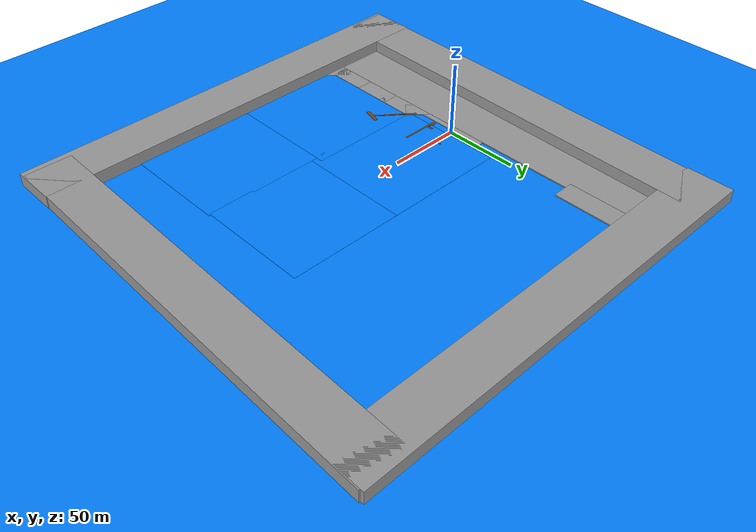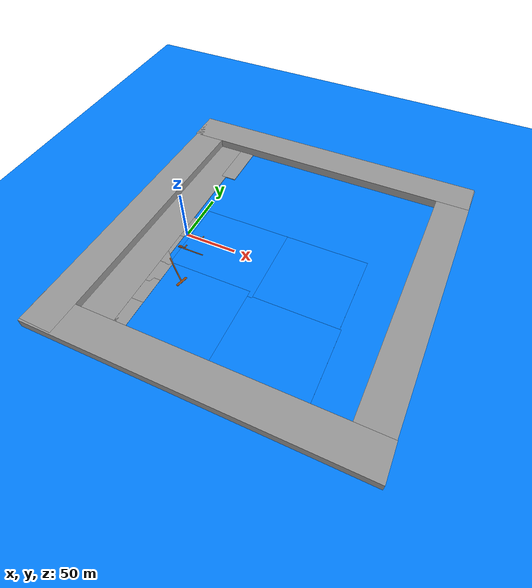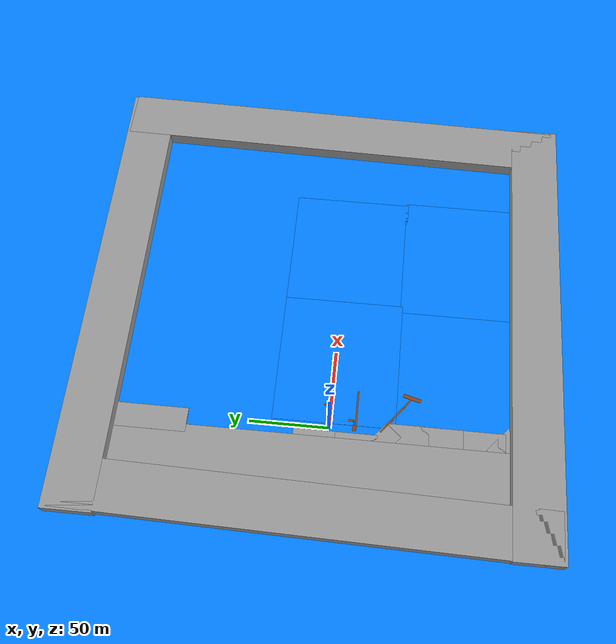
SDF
<sdf version="1.7">
 <world name="default">
  <model name="ground_plane">
   <static>1</static>
   <link name="link">
    <collision name="collision">
     <geometry><plane><normal>0 0 1</normal><size>100 100</size></plane></geometry>
     <surface><friction><ode><mu>100</mu><mu2>50</mu2></ode></friction></surface>
    </collision>
    <visual name="visual">
     <cast_shadows>0</cast_shadows>
     <geometry><plane><normal>0 0 1</normal><size>100 100</size></plane></geometry>
     <material>
      <ambient>0 0.5 1 1</ambient>
      <diffuse>0 0.5 1 1</diffuse>
      <specular>0.1 0.1 0.1 1</specular>
      <emissive>0 0 0 0</emissive>
     </material>
    </visual>
   </link>
  </model>
  <model name="water">
   <link name="link">
    <inertial>
     <mass>1.0585</mass>
     <inertia><ixx>525.225</ixx><ixy>0</ixy><ixz>0</ixz><iyy>622.97</iyy><iyz>0</iyz><izz>1148.19</izz></inertia>
    </inertial>
    <pose>37.5335 0 0 0 -0 0</pose>
    <visual name="visual">
     <geometry><box><size>84.0384 77.1644 0.109494</size></box></geometry>
     <material>
      <ambient>0 0.5 1 1</ambient>
      <diffuse>0 0.5 1 1</diffuse>
      <specular>0.1 0.1 0.1 1</specular>
      <emissive>0 0 0 0</emissive>
     </material>
    </visual>
    <collision name="collision">
     <geometry><box><size>84.0384 77.1644 0.109494</size></box></geometry>
     <surface>
      <friction>
       <ode><mu>1</mu><mu2>1</mu2><fdir1>0 0 0</fdir1><slip1>0</slip1><slip2>0</slip2></ode>
       <torsional>
        <coefficient>1</coefficient>
        <patch_radius>0</patch_radius>
        <surface_radius>0</surface_radius>
        <use_patch_radius>1</use_patch_radius>
        <ode><slip>0</slip></ode>
       </torsional>
      </friction>
      <bounce><restitution_coefficient>0</restitution_coefficient><threshold>1e+06</threshold></bounce>
      <contact>
       <collide_without_contact>0</collide_without_contact>
       <collide_without_contact_bitmask>1</collide_without_contact_bitmask>
       <collide_bitmask>1</collide_bitmask>
       <ode>
        <soft_cfm>0</soft_cfm>
        <soft_erp>0.2</soft_erp>
        <kp>1e+13</kp>
        <kd>1</kd>
        <max_vel>0.01</max_vel>
        <min_depth>0</min_depth>
       </ode>
       <bullet>
        <split_impulse>1</split_impulse>
        <split_impulse_penetration_threshold>-0.01</split_impulse_penetration_threshold>
        <soft_cfm>0</soft_cfm>
        <soft_erp>0.2</soft_erp>
        <kp>1e+13</kp>
        <kd>1</kd>
       </bullet>
      </contact>
     </surface>
    </collision>
   </link>
   <static>1</static>
   <pose>7.66775 -2.0554 0 0 -0 0</pose>
  </model>
  <model name="water_clone">
   <link name="link">
    <inertial>
     <mass>1.0585</mass>
     <inertia><ixx>525.225</ixx><ixy>0</ixy><ixz>0</ixz><iyy>622.97</iyy><iyz>0</iyz><izz>1148.19</izz></inertia>
    </inertial>
    <pose>37.5335 0 0 0 -0 0</pose>
    <visual name="visual">
     <geometry><box><size>84.0384 77.1644 0.109494</size></box></geometry>
     <material>
      <ambient>0 0.5 1 1</ambient>
      <diffuse>0 0.5 1 1</diffuse>
      <specular>0.1 0.1 0.1 1</specular>
      <emissive>0 0 0 0</emissive>
     </material>
    </visual>
    <collision name="collision">
     <geometry><box><size>84.0384 77.1644 0.109494</size></box></geometry>
     <surface>
      <friction>
       <ode><mu>1</mu><mu2>1</mu2><fdir1>0 0 0</fdir1><slip1>0</slip1><slip2>0</slip2></ode>
       <torsional>
        <coefficient>1</coefficient>
        <patch_radius>0</patch_radius>
        <surface_radius>0</surface_radius>
        <use_patch_radius>1</use_patch_radius>
        <ode><slip>0</slip></ode>
       </torsional>
      </friction>
      <bounce><restitution_coefficient>0</restitution_coefficient><threshold>1e+06</threshold></bounce>
      <contact>
       <collide_without_contact>0</collide_without_contact>
       <collide_without_contact_bitmask>1</collide_without_contact_bitmask>
       <collide_bitmask>1</collide_bitmask>
       <ode>
        <soft_cfm>0</soft_cfm>
        <soft_erp>0.2</soft_erp>
        <kp>1e+13</kp>
        <kd>1</kd>
        <max_vel>0.01</max_vel>
        <min_depth>0</min_depth>
       </ode>
       <bullet>
        <split_impulse>1</split_impulse>
        <split_impulse_penetration_threshold>-0.01</split_impulse_penetration_threshold>
        <soft_cfm>0</soft_cfm>
        <soft_erp>0.2</soft_erp>
        <kp>1e+13</kp>
        <kd>1</kd>
       </bullet>
      </contact>
     </surface>
    </collision>
   </link>
   <static>1</static>
   <pose>3.3347 -73.6319 0 0 -0 0</pose>
  </model>
  <model name="water_clone_0">
   <link name="link">
    <inertial>
     <mass>1.0585</mass>
     <inertia><ixx>525.225</ixx><ixy>0</ixy><ixz>0</ixz><iyy>622.97</iyy><iyz>0</iyz><izz>1148.19</izz></inertia>
    </inertial>
    <pose>37.5335 0 0 0 -0 0</pose>
    <visual name="visual">
     <geometry><box><size>84.0384 77.1644 0.109494</size></box></geometry>
     <material>
      <ambient>0 0.5 1 1</ambient>
      <diffuse>0 0.5 1 1</diffuse>
      <specular>0.1 0.1 0.1 1</specular>
      <emissive>0 0 0 0</emissive>
     </material>
    </visual>
    <collision name="collision">
     <geometry><box><size>84.0384 77.1644 0.109494</size></box></geometry>
     <surface>
      <friction>
       <ode><mu>1</mu><mu2>1</mu2><fdir1>0 0 0</fdir1><slip1>0</slip1><slip2>0</slip2></ode>
       <torsional>
        <coefficient>1</coefficient>
        <patch_radius>0</patch_radius>
        <surface_radius>0</surface_radius>
        <use_patch_radius>1</use_patch_radius>
        <ode><slip>0</slip></ode>
       </torsional>
      </friction>
      <bounce><restitution_coefficient>0</restitution_coefficient><threshold>1e+06</threshold></bounce>
      <contact>
       <collide_without_contact>0</collide_without_contact>
       <collide_without_contact_bitmask>1</collide_without_contact_bitmask>
       <collide_bitmask>1</collide_bitmask>
       <ode>
        <soft_cfm>0</soft_cfm>
        <soft_erp>0.2</soft_erp>
        <kp>1e+13</kp>
        <kd>1</kd>
        <max_vel>0.01</max_vel>
        <min_depth>0</min_depth>
       </ode>
       <bullet>
        <split_impulse>1</split_impulse>
        <split_impulse_penetration_threshold>-0.01</split_impulse_penetration_threshold>
        <soft_cfm>0</soft_cfm>
        <soft_erp>0.2</soft_erp>
        <kp>1e+13</kp>
        <kd>1</kd>
       </bullet>
      </contact>
     </surface>
    </collision>
   </link>
   <static>1</static>
   <pose>87.2585 -77.873 0 0 -0 0</pose>
  </model>
  <model name="water_clone_1">
   <link name="link">
    <inertial>
     <mass>1.0585</mass>
     <inertia><ixx>525.225</ixx><ixy>0</ixy><ixz>0</ixz><iyy>622.97</iyy><iyz>0</iyz><izz>1148.19</izz></inertia>
    </inertial>
    <pose>37.5335 0 0 0 -0 0</pose>
    <visual name="visual">
     <geometry><box><size>84.0384 77.1644 0.109494</size></box></geometry>
     <material>
      <ambient>0 0.5 1 1</ambient>
      <diffuse>0 0.5 1 1</diffuse>
      <specular>0.1 0.1 0.1 1</specular>
      <emissive>0 0 0 0</emissive>
     </material>
    </visual>
    <collision name="collision">
     <geometry><box><size>84.0384 77.1644 0.109494</size></box></geometry>
     <surface>
      <friction>
       <ode><mu>1</mu><mu2>1</mu2><fdir1>0 0 0</fdir1><slip1>0</slip1><slip2>0</slip2></ode>
       <torsional>
        <coefficient>1</coefficient>
        <patch_radius>0</patch_radius>
        <surface_radius>0</surface_radius>
        <use_patch_radius>1</use_patch_radius>
        <ode><slip>0</slip></ode>
       </torsional>
      </friction>
      <bounce><restitution_coefficient>0</restitution_coefficient><threshold>1e+06</threshold></bounce>
      <contact>
       <collide_without_contact>0</collide_without_contact>
       <collide_without_contact_bitmask>1</collide_without_contact_bitmask>
       <collide_bitmask>1</collide_bitmask>
       <ode>
        <soft_cfm>0</soft_cfm>
        <soft_erp>0.2</soft_erp>
        <kp>1e+13</kp>
        <kd>1</kd>
        <max_vel>0.01</max_vel>
        <min_depth>0</min_depth>
       </ode>
       <bullet>
        <split_impulse>1</split_impulse>
        <split_impulse_penetration_threshold>-0.01</split_impulse_penetration_threshold>
        <soft_cfm>0</soft_cfm>
        <soft_erp>0.2</soft_erp>
        <kp>1e+13</kp>
        <kd>1</kd>
       </bullet>
      </contact>
     </surface>
    </collision>
   </link>
   <static>1</static>
   <pose>85.9295 -2.08065 0 0 -0 0</pose>
  </model>
  <model name="ground">
   <link name="link">
    <inertial>
     <mass>1</mass>
     <inertia>
      <ixx>0.166667</ixx>
      <ixy>0</ixy>
      <ixz>0</ixz>
      <iyy>0.166667</iyy>
      <iyz>0</iyz>
      <izz>0.166667</izz>
     </inertia>
    </inertial>
    <pose>0 2.71082 0 0 -0 0</pose>
    <visual name="visual">
     <geometry><box><size>12.2775 26.0732 0.428308</size></box></geometry>
     <material>
      <lighting>1</lighting>
      <script><uri>file://media/materials/scripts/gazebo.material</uri><name>Gazebo/Grey</name></script>
      <shader type="pixel"/>
     </material>
    </visual>
    <collision name="collision">
     <geometry><box><size>12.2775 26.0732 0.428308</size></box></geometry>
     <surface>
      <friction>
       <ode><mu>1</mu><mu2>1</mu2><fdir1>0 0 0</fdir1><slip1>0</slip1><slip2>0</slip2></ode>
       <torsional>
        <coefficient>1</coefficient>
        <patch_radius>0</patch_radius>
        <surface_radius>0</surface_radius>
        <use_patch_radius>1</use_patch_radius>
        <ode><slip>0</slip></ode>
       </torsional>
      </friction>
      <bounce><restitution_coefficient>0</restitution_coefficient><threshold>1e+06</threshold></bounce>
      <contact>
       <collide_without_contact>0</collide_without_contact>
       <collide_without_contact_bitmask>1</collide_without_contact_bitmask>
       <collide_bitmask>1</collide_bitmask>
       <ode>
        <soft_cfm>0</soft_cfm>
        <soft_erp>0.2</soft_erp>
        <kp>1e+13</kp>
        <kd>1</kd>
        <max_vel>0.01</max_vel>
        <min_depth>0</min_depth>
       </ode>
       <bullet>
        <split_impulse>1</split_impulse>
        <split_impulse_penetration_threshold>-0.01</split_impulse_penetration_threshold>
        <soft_cfm>0</soft_cfm>
        <soft_erp>0.2</soft_erp>
        <kp>1e+13</kp>
        <kd>1</kd>
       </bullet>
      </contact>
     </surface>
    </collision>
   </link>
   <link name="link_clone">
    <inertial>
     <mass>1</mass>
     <inertia>
      <ixx>0.166667</ixx>
      <ixy>0</ixy>
      <ixz>0</ixz>
      <iyy>0.166667</iyy>
      <iyz>0</iyz>
      <izz>0.166667</izz>
     </inertia>
    </inertial>
    <pose>-7.60672 19.8582 0 0 -0 0.838579</pose>
    <visual name="visual">
     <geometry><box><size>12.2775 26.0732 0.428308</size></box></geometry>
     <material>
      <lighting>1</lighting>
      <script><uri>file://media/materials/scripts/gazebo.material</uri><name>Gazebo/Grey</name></script>
      <shader type="pixel"/>
     </material>
    </visual>
    <collision name="collision">
     <geometry><box><size>12.2775 26.0732 0.428308</size></box></geometry>
     <surface>
      <friction>
       <ode><mu>1</mu><mu2>1</mu2><fdir1>0 0 0</fdir1><slip1>0</slip1><slip2>0</slip2></ode>
       <torsional>
        <coefficient>1</coefficient>
        <patch_radius>0</patch_radius>
        <surface_radius>0</surface_radius>
        <use_patch_radius>1</use_patch_radius>
        <ode><slip>0</slip></ode>
       </torsional>
      </friction>
      <bounce><restitution_coefficient>0</restitution_coefficient><threshold>1e+06</threshold></bounce>
      <contact>
       <collide_without_contact>0</collide_without_contact>
       <collide_without_contact_bitmask>1</collide_without_contact_bitmask>
       <collide_bitmask>1</collide_bitmask>
       <ode>
        <soft_cfm>0</soft_cfm>
        <soft_erp>0.2</soft_erp>
        <kp>1e+13</kp>
        <kd>1</kd>
        <max_vel>0.01</max_vel>
        <min_depth>0</min_depth>
       </ode>
       <bullet>
        <split_impulse>1</split_impulse>
        <split_impulse_penetration_threshold>-0.01</split_impulse_penetration_threshold>
        <soft_cfm>0</soft_cfm>
        <soft_erp>0.2</soft_erp>
        <kp>1e+13</kp>
        <kd>1</kd>
       </bullet>
      </contact>
     </surface>
    </collision>
   </link>
   <link name="link_clone_0">
    <inertial>
     <mass>1</mass>
     <inertia>
      <ixx>0.166667</ixx>
      <ixy>0</ixy>
      <ixz>0</ixz>
      <iyy>0.166667</iyy>
      <iyz>0</iyz>
      <izz>0.166667</izz>
     </inertia>
    </inertial>
    <pose>-8.13936 34.3499 0 0 -0 0</pose>
    <visual name="visual">
     <geometry><box><size>12.2775 26.0732 0.428308</size></box></geometry>
     <material>
      <lighting>1</lighting>
      <script><uri>file://media/materials/scripts/gazebo.material</uri><name>Gazebo/Grey</name></script>
      <shader type="pixel"/>
     </material>
    </visual>
    <collision name="collision">
     <geometry><box><size>12.2775 26.0732 0.428308</size></box></geometry>
     <surface>
      <friction>
       <ode><mu>1</mu><mu2>1</mu2><fdir1>0 0 0</fdir1><slip1>0</slip1><slip2>0</slip2></ode>
       <torsional>
        <coefficient>1</coefficient>
        <patch_radius>0</patch_radius>
        <surface_radius>0</surface_radius>
        <use_patch_radius>1</use_patch_radius>
        <ode><slip>0</slip></ode>
       </torsional>
      </friction>
      <bounce><restitution_coefficient>0</restitution_coefficient><threshold>1e+06</threshold></bounce>
      <contact>
       <collide_without_contact>0</collide_without_contact>
       <collide_without_contact_bitmask>1</collide_without_contact_bitmask>
       <collide_bitmask>1</collide_bitmask>
       <ode>
        <soft_cfm>0</soft_cfm>
        <soft_erp>0.2</soft_erp>
        <kp>1e+13</kp>
        <kd>1</kd>
        <max_vel>0.01</max_vel>
        <min_depth>0</min_depth>
       </ode>
       <bullet>
        <split_impulse>1</split_impulse>
        <split_impulse_penetration_threshold>-0.01</split_impulse_penetration_threshold>
        <soft_cfm>0</soft_cfm>
        <soft_erp>0.2</soft_erp>
        <kp>1e+13</kp>
        <kd>1</kd>
       </bullet>
      </contact>
     </surface>
    </collision>
   </link>
   <link name="link_clone_0_clone">
    <inertial>
     <mass>1</mass>
     <inertia>
      <ixx>0.166667</ixx>
      <ixy>0</ixy>
      <ixz>0</ixz>
      <iyy>0.166667</iyy>
      <iyz>0</iyz>
      <izz>0.166667</izz>
     </inertia>
    </inertial>
    <pose>-8.03787 60.3254 0 0 -0 0</pose>
    <visual name="visual">
     <geometry><box><size>12.2775 26.0732 0.428308</size></box></geometry>
     <material>
      <lighting>1</lighting>
      <script><uri>file://media/materials/scripts/gazebo.material</uri><name>Gazebo/Grey</name></script>
      <shader type="pixel"/>
     </material>
    </visual>
    <collision name="collision">
     <geometry><box><size>12.2775 26.0732 0.428308</size></box></geometry>
     <surface>
      <friction>
       <ode><mu>1</mu><mu2>1</mu2><fdir1>0 0 0</fdir1><slip1>0</slip1><slip2>0</slip2></ode>
       <torsional>
        <coefficient>1</coefficient>
        <patch_radius>0</patch_radius>
        <surface_radius>0</surface_radius>
        <use_patch_radius>1</use_patch_radius>
        <ode><slip>0</slip></ode>
       </torsional>
      </friction>
      <bounce><restitution_coefficient>0</restitution_coefficient><threshold>1e+06</threshold></bounce>
      <contact>
       <collide_without_contact>0</collide_without_contact>
       <collide_without_contact_bitmask>1</collide_without_contact_bitmask>
       <collide_bitmask>1</collide_bitmask>
       <ode>
        <soft_cfm>0</soft_cfm>
        <soft_erp>0.2</soft_erp>
        <kp>1e+13</kp>
        <kd>1</kd>
        <max_vel>0.01</max_vel>
        <min_depth>0</min_depth>
       </ode>
       <bullet>
        <split_impulse>1</split_impulse>
        <split_impulse_penetration_threshold>-0.01</split_impulse_penetration_threshold>
        <soft_cfm>0</soft_cfm>
        <soft_erp>0.2</soft_erp>
        <kp>1e+13</kp>
        <kd>1</kd>
       </bullet>
      </contact>
     </surface>
    </collision>
   </link>
   <static>1</static>
   <pose>0.250638 -51.022 0.106728 0 -0 0</pose>
  </model>
  <model name="Untitled"><pose>61.4045 -75.8074 0 0 -0 0</pose><static>1</static></model>
  <model name="pontoon1">
   <link name="link">
    <inertial>
     <mass>6.89723</mass>
     <inertia><ixx>0.699771</ixx><ixy>0</ixy><ixz>0</ixz><iyy>125.749</iyy><iyz>0</iyz><izz>126.198</izz></inertia>
    </inertial>
    <pose>6.89493 0 -0.43683 0 -0 0</pose>
    <visual name="visual">
     <geometry><box><size>14.7839 1 0.466349</size></box></geometry>
     <material>
      <ambient>0.55 0.27 0.07 1</ambient>
      <diffuse>0.55 0.27 0.07 1</diffuse>
      <specular>0.1 0.1 0.1 1</specular>
      <emissive>0 0 0 0</emissive>
     </material>
    </visual>
    <collision name="collision">
     <geometry><box><size>14.7839 1 0.466349</size></box></geometry>
     <surface>
      <friction>
       <ode><mu>1</mu><mu2>1</mu2><fdir1>0 0 0</fdir1><slip1>0</slip1><slip2>0</slip2></ode>
       <torsional>
        <coefficient>1</coefficient>
        <patch_radius>0</patch_radius>
        <surface_radius>0</surface_radius>
        <use_patch_radius>1</use_patch_radius>
        <ode><slip>0</slip></ode>
       </torsional>
      </friction>
      <bounce><restitution_coefficient>0</restitution_coefficient><threshold>1e+06</threshold></bounce>
      <contact>
       <collide_without_contact>0</collide_without_contact>
       <collide_without_contact_bitmask>1</collide_without_contact_bitmask>
       <collide_bitmask>1</collide_bitmask>
       <ode>
        <soft_cfm>0</soft_cfm>
        <soft_erp>0.2</soft_erp>
        <kp>1e+13</kp>
        <kd>1</kd>
        <max_vel>0.01</max_vel>
        <min_depth>0</min_depth>
       </ode>
       <bullet>
        <split_impulse>1</split_impulse>
        <split_impulse_penetration_threshold>-0.01</split_impulse_penetration_threshold>
        <soft_cfm>0</soft_cfm>
        <soft_erp>0.2</soft_erp>
        <kp>1e+13</kp>
        <kd>1</kd>
       </bullet>
      </contact>
     </surface>
    </collision>
   </link>
   <link name="link_0">
    <inertial>
     <mass>2.18615</mass>
     <inertia><ixx>5.06693</ixx><ixy>0</ixy><ixz>0</ixz><iyy>0.213678</iyy><iyz>0</iyz><izz>5.21761</izz></inertia>
    </inertial>
    <pose>14.7716 0.008705 -0.420134 0 -0 0</pose>
    <visual name="visual">
     <geometry><box><size>1 5.25737 0.415813</size></box></geometry>
     <material>
      <ambient>0.55 0.27 0.07 1</ambient>
      <diffuse>0.55 0.27 0.07 1</diffuse>
      <specular>0.1 0.1 0.1 1</specular>
      <emissive>0 0 0 0</emissive>
     </material>
    </visual>
    <collision name="collision">
     <geometry><box><size>1 5.25737 0.415813</size></box></geometry>
     <surface>
      <friction>
       <ode><mu>1</mu><mu2>1</mu2><fdir1>0 0 0</fdir1><slip1>0</slip1><slip2>0</slip2></ode>
       <torsional>
        <coefficient>1</coefficient>
        <patch_radius>0</patch_radius>
        <surface_radius>0</surface_radius>
        <use_patch_radius>1</use_patch_radius>
        <ode><slip>0</slip></ode>
       </torsional>
      </friction>
      <bounce><restitution_coefficient>0</restitution_coefficient><threshold>1e+06</threshold></bounce>
      <contact>
       <collide_without_contact>0</collide_without_contact>
       <collide_without_contact_bitmask>1</collide_without_contact_bitmask>
       <collide_bitmask>1</collide_bitmask>
       <ode>
        <soft_cfm>0</soft_cfm>
        <soft_erp>0.2</soft_erp>
        <kp>1e+13</kp>
        <kd>1</kd>
        <max_vel>0.01</max_vel>
        <min_depth>0</min_depth>
       </ode>
       <bullet>
        <split_impulse>1</split_impulse>
        <split_impulse_penetration_threshold>-0.01</split_impulse_penetration_threshold>
        <soft_cfm>0</soft_cfm>
        <soft_erp>0.2</soft_erp>
        <kp>1e+13</kp>
        <kd>1</kd>
       </bullet>
      </contact>
     </surface>
    </collision>
   </link>
   <static>1</static>
   <pose>0.43633 1.97194 0.5 0 -0 0</pose>
  </model>
  <model name="pontoon2">
   <link name="link">
    <inertial>
     <mass>2.03797</mass>
     <inertia><ixx>0.198693</ixx><ixy>0</ixy><ixz>0</ixz><iyy>112.631</iyy><iyz>0</iyz><izz>112.772</izz></inertia>
    </inertial>
    <visual name="visual">
     <geometry><box><size>25.7492 1 0.412244</size></box></geometry>
     <material>
      <ambient>0.55 0.27 0.07 1</ambient>
      <diffuse>0.55 0.27 0.07 1</diffuse>
      <specular>0.1 0.1 0.1 1</specular>
      <emissive>0 0 0 0</emissive>
     </material>
    </visual>
    <collision name="collision">
     <geometry><box><size>25.7492 1 0.412244</size></box></geometry>
     <surface>
      <friction>
       <ode><mu>1</mu><mu2>1</mu2><fdir1>0 0 0</fdir1><slip1>0</slip1><slip2>0</slip2></ode>
       <torsional>
        <coefficient>1</coefficient>
        <patch_radius>0</patch_radius>
        <surface_radius>0</surface_radius>
        <use_patch_radius>1</use_patch_radius>
        <ode><slip>0</slip></ode>
       </torsional>
      </friction>
      <bounce><restitution_coefficient>0</restitution_coefficient><threshold>1e+06</threshold></bounce>
      <contact>
       <collide_without_contact>0</collide_without_contact>
       <collide_without_contact_bitmask>1</collide_without_contact_bitmask>
       <collide_bitmask>1</collide_bitmask>
       <ode>
        <soft_cfm>0</soft_cfm>
        <soft_erp>0.2</soft_erp>
        <kp>1e+13</kp>
        <kd>1</kd>
        <max_vel>0.01</max_vel>
        <min_depth>0</min_depth>
       </ode>
       <bullet>
        <split_impulse>1</split_impulse>
        <split_impulse_penetration_threshold>-0.01</split_impulse_penetration_threshold>
        <soft_cfm>0</soft_cfm>
        <soft_erp>0.2</soft_erp>
        <kp>1e+13</kp>
        <kd>1</kd>
       </bullet>
      </contact>
     </surface>
    </collision>
   </link>
   <link name="link_clone">
    <inertial>
     <mass>0.0692908</mass>
     <inertia>
      <ixx>0.00119337</ixx>
      <ixy>0</ixy>
      <ixz>0</ixz>
      <iyy>0.0726039</iyy>
      <iyz>0</iyz>
      <izz>0.072785</izz>
     </inertia>
    </inertial>
    <pose>-7.77701 1.36068 0 0 -0 0</pose>
    <visual name="visual">
     <geometry><box><size>3.53357 0.344994 0.296059</size></box></geometry>
     <material>
      <ambient>0.55 0.27 0.07 1</ambient>
      <diffuse>0.55 0.27 0.07 1</diffuse>
      <specular>0.1 0.1 0.1 1</specular>
      <emissive>0 0 0 0</emissive>
     </material>
    </visual>
    <collision name="collision">
     <geometry><box><size>3.53357 0.344994 0.296059</size></box></geometry>
     <surface>
      <friction>
       <ode><mu>1</mu><mu2>1</mu2><fdir1>0 0 0</fdir1><slip1>0</slip1><slip2>0</slip2></ode>
       <torsional>
        <coefficient>1</coefficient>
        <patch_radius>0</patch_radius>
        <surface_radius>0</surface_radius>
        <use_patch_radius>1</use_patch_radius>
        <ode><slip>0</slip></ode>
       </torsional>
      </friction>
      <bounce><restitution_coefficient>0</restitution_coefficient><threshold>1e+06</threshold></bounce>
      <contact>
       <collide_without_contact>0</collide_without_contact>
       <collide_without_contact_bitmask>1</collide_without_contact_bitmask>
       <collide_bitmask>1</collide_bitmask>
       <ode>
        <soft_cfm>0</soft_cfm>
        <soft_erp>0.2</soft_erp>
        <kp>1e+13</kp>
        <kd>1</kd>
        <max_vel>0.01</max_vel>
        <min_depth>0</min_depth>
       </ode>
       <bullet>
        <split_impulse>1</split_impulse>
        <split_impulse_penetration_threshold>-0.01</split_impulse_penetration_threshold>
        <soft_cfm>0</soft_cfm>
        <soft_erp>0.2</soft_erp>
        <kp>1e+13</kp>
        <kd>1</kd>
       </bullet>
      </contact>
     </surface>
    </collision>
   </link>
   <link name="link_clone_clone">
    <inertial>
     <mass>0.498797</mass>
     <inertia>
      <ixx>0.172417</ixx>
      <ixy>0</ixy>
      <ixz>0</ixz>
      <iyy>0.524602</iyy>
      <iyz>0</iyz>
      <izz>0.685821</izz>
     </inertia>
    </inertial>
    <pose>-11.19 1.03862 0 0 -0 0</pose>
    <visual name="visual">
     <geometry><box><size>3.53357 2.00332 0.367019</size></box></geometry>
     <material>
      <ambient>0.55 0.27 0.07 1</ambient>
      <diffuse>0.55 0.27 0.07 1</diffuse>
      <specular>0.1 0.1 0.1 1</specular>
      <emissive>0 0 0 0</emissive>
     </material>
    </visual>
    <collision name="collision">
     <geometry><box><size>3.53357 2.00332 0.367019</size></box></geometry>
     <surface>
      <friction>
       <ode><mu>1</mu><mu2>1</mu2><fdir1>0 0 0</fdir1><slip1>0</slip1><slip2>0</slip2></ode>
       <torsional>
        <coefficient>1</coefficient>
        <patch_radius>0</patch_radius>
        <surface_radius>0</surface_radius>
        <use_patch_radius>1</use_patch_radius>
        <ode><slip>0</slip></ode>
       </torsional>
      </friction>
      <bounce><restitution_coefficient>0</restitution_coefficient><threshold>1e+06</threshold></bounce>
      <contact>
       <collide_without_contact>0</collide_without_contact>
       <collide_without_contact_bitmask>1</collide_without_contact_bitmask>
       <collide_bitmask>1</collide_bitmask>
       <ode>
        <soft_cfm>0</soft_cfm>
        <soft_erp>0.2</soft_erp>
        <kp>1e+13</kp>
        <kd>1</kd>
        <max_vel>0.01</max_vel>
        <min_depth>0</min_depth>
       </ode>
       <bullet>
        <split_impulse>1</split_impulse>
        <split_impulse_penetration_threshold>-0.01</split_impulse_penetration_threshold>
        <soft_cfm>0</soft_cfm>
        <soft_erp>0.2</soft_erp>
        <kp>1e+13</kp>
        <kd>1</kd>
       </bullet>
      </contact>
     </surface>
    </collision>
   </link>
   <link name="link_clone_clone_0">
    <inertial>
     <mass>0.266143</mass>
     <inertia>
      <ixx>0.236556</ixx>
      <ixy>0</ixy>
      <ixz>0</ixz>
      <iyy>0.0359927</iyy>
      <iyz>0</iyz>
      <izz>0.267165</izz>
     </inertia>
    </inertial>
    <pose>-6.57032 3.12706 0 0 -0 0</pose>
    <visual name="visual">
     <geometry><box><size>1.22535 3.24724 0.348385</size></box></geometry>
     <material>
      <ambient>0.55 0.27 0.07 1</ambient>
      <diffuse>0.55 0.27 0.07 1</diffuse>
      <specular>0.1 0.1 0.1 1</specular>
      <emissive>0 0 0 0</emissive>
     </material>
    </visual>
    <collision name="collision">
     <geometry><box><size>1.22535 3.24724 0.348385</size></box></geometry>
     <surface>
      <friction>
       <ode><mu>1</mu><mu2>1</mu2><fdir1>0 0 0</fdir1><slip1>0</slip1><slip2>0</slip2></ode>
       <torsional>
        <coefficient>1</coefficient>
        <patch_radius>0</patch_radius>
        <surface_radius>0</surface_radius>
        <use_patch_radius>1</use_patch_radius>
        <ode><slip>0</slip></ode>
       </torsional>
      </friction>
      <bounce><restitution_coefficient>0</restitution_coefficient><threshold>1e+06</threshold></bounce>
      <contact>
       <collide_without_contact>0</collide_without_contact>
       <collide_without_contact_bitmask>1</collide_without_contact_bitmask>
       <collide_bitmask>1</collide_bitmask>
       <ode>
        <soft_cfm>0</soft_cfm>
        <soft_erp>0.2</soft_erp>
        <kp>1e+13</kp>
        <kd>1</kd>
        <max_vel>0.01</max_vel>
        <min_depth>0</min_depth>
       </ode>
       <bullet>
        <split_impulse>1</split_impulse>
        <split_impulse_penetration_threshold>-0.01</split_impulse_penetration_threshold>
        <soft_cfm>0</soft_cfm>
        <soft_erp>0.2</soft_erp>
        <kp>1e+13</kp>
        <kd>1</kd>
       </bullet>
      </contact>
     </surface>
    </collision>
   </link>
   <static>1</static>
   <pose>12.812 -16.1142 0.075651 0 -0 0</pose>
  </model>
  <model name="pontoon3">
   <link name="link">
    <inertial>
     <mass>3.42045</mass>
     <inertia><ixx>0.368894</ixx><ixy>0</ixy><ixz>0</ixz><iyy>263.991</iyy><iyz>0</iyz><izz>264.193</izz></inertia>
    </inertial>
    <visual name="visual">
     <geometry><box><size>30.4281 1 0.542397</size></box></geometry>
     <material>
      <ambient>0.55 0.27 0.07 1</ambient>
      <diffuse>0.55 0.27 0.07 1</diffuse>
      <specular>0.1 0.1 0.1 1</specular>
      <emissive>0 0 0 0</emissive>
     </material>
    </visual>
    <collision name="collision">
     <geometry><box><size>30.4281 1 0.542397</size></box></geometry>
     <surface>
      <friction>
       <ode><mu>1</mu><mu2>1</mu2><fdir1>0 0 0</fdir1><slip1>0</slip1><slip2>0</slip2></ode>
       <torsional>
        <coefficient>1</coefficient>
        <patch_radius>0</patch_radius>
        <surface_radius>0</surface_radius>
        <use_patch_radius>1</use_patch_radius>
        <ode><slip>0</slip></ode>
       </torsional>
      </friction>
      <bounce><restitution_coefficient>0</restitution_coefficient><threshold>1e+06</threshold></bounce>
      <contact>
       <collide_without_contact>0</collide_without_contact>
       <collide_without_contact_bitmask>1</collide_without_contact_bitmask>
       <collide_bitmask>1</collide_bitmask>
       <ode>
        <soft_cfm>0</soft_cfm>
        <soft_erp>0.2</soft_erp>
        <kp>1e+13</kp>
        <kd>1</kd>
        <max_vel>0.01</max_vel>
        <min_depth>0</min_depth>
       </ode>
       <bullet>
        <split_impulse>1</split_impulse>
        <split_impulse_penetration_threshold>-0.01</split_impulse_penetration_threshold>
        <soft_cfm>0</soft_cfm>
        <soft_erp>0.2</soft_erp>
        <kp>1e+13</kp>
        <kd>1</kd>
       </bullet>
      </contact>
     </surface>
    </collision>
   </link>
   <link name="link_clone">
    <inertial>
     <mass>3.05617</mass>
     <inertia><ixx>1.42191</ixx><ixy>0</ixy><ixz>0</ixz><iyy>33.4759</iyy><iyz>0</iyz><izz>34.7375</izz></inertia>
    </inertial>
    <pose>14.8489 0.140112 0 0 -0 1.97926</pose>
    <visual name="visual">
     <geometry><box><size>11.4511 2.29528 0.561043</size></box></geometry>
     <material>
      <ambient>0.55 0.27 0.07 1</ambient>
      <diffuse>0.55 0.27 0.07 1</diffuse>
      <specular>0.1 0.1 0.1 1</specular>
      <emissive>0 0 0 0</emissive>
     </material>
    </visual>
    <collision name="collision">
     <geometry><box><size>11.4511 2.29528 0.561043</size></box></geometry>
     <surface>
      <friction>
       <ode><mu>1</mu><mu2>1</mu2><fdir1>0 0 0</fdir1><slip1>0</slip1><slip2>0</slip2></ode>
       <torsional>
        <coefficient>1</coefficient>
        <patch_radius>0</patch_radius>
        <surface_radius>0</surface_radius>
        <use_patch_radius>1</use_patch_radius>
        <ode><slip>0</slip></ode>
       </torsional>
      </friction>
      <bounce><restitution_coefficient>0</restitution_coefficient><threshold>1e+06</threshold></bounce>
      <contact>
       <collide_without_contact>0</collide_without_contact>
       <collide_without_contact_bitmask>1</collide_without_contact_bitmask>
       <collide_bitmask>1</collide_bitmask>
       <ode>
        <soft_cfm>0</soft_cfm>
        <soft_erp>0.2</soft_erp>
        <kp>1e+13</kp>
        <kd>1</kd>
        <max_vel>0.01</max_vel>
        <min_depth>0</min_depth>
       </ode>
       <bullet>
        <split_impulse>1</split_impulse>
        <split_impulse_penetration_threshold>-0.01</split_impulse_penetration_threshold>
        <soft_cfm>0</soft_cfm>
        <soft_erp>0.2</soft_erp>
        <kp>1e+13</kp>
        <kd>1</kd>
       </bullet>
      </contact>
     </surface>
    </collision>
   </link>
   <static>1</static>
   <pose>12.3458 -40.9902 0.052936 0 0 -0.670036</pose>
  </model>
  <model name="boundaries">
   <link name="link">
    <inertial>
     <mass>149705</mass>
     <inertia>
      <ixx>1.54649e+07</ixx>
      <ixy>0</ixy>
      <ixz>0</ixz>
      <iyy>1.13831e+09</iyy>
      <iyz>0</iyz>
      <izz>1.14757e+09</izz>
     </inertia>
    </inertial>
    <pose>-0.277473 10.4919 -0 0 -0 0</pose>
    <visual name="visual">
     <geometry><box><size>301.655 31.4824 15.7637</size></box></geometry>
     <material>
      <script><name>Gazebo/Grey</name><uri>file://media/materials/scripts/gazebo.material</uri></script>
      <shader type="pixel"/>
     </material>
    </visual>
    <collision name="collision">
     <geometry><box><size>301.655 31.4824 15.7637</size></box></geometry>
     <surface>
      <friction>
       <ode><mu>1</mu><mu2>1</mu2><fdir1>0 0 0</fdir1><slip1>0</slip1><slip2>0</slip2></ode>
       <torsional>
        <coefficient>1</coefficient>
        <patch_radius>0</patch_radius>
        <surface_radius>0</surface_radius>
        <use_patch_radius>1</use_patch_radius>
        <ode><slip>0</slip></ode>
       </torsional>
      </friction>
      <bounce><restitution_coefficient>0</restitution_coefficient><threshold>1e+06</threshold></bounce>
      <contact>
       <collide_without_contact>0</collide_without_contact>
       <collide_without_contact_bitmask>1</collide_without_contact_bitmask>
       <collide_bitmask>1</collide_bitmask>
       <ode>
        <soft_cfm>0</soft_cfm>
        <soft_erp>0.2</soft_erp>
        <kp>1e+13</kp>
        <kd>1</kd>
        <max_vel>0.01</max_vel>
        <min_depth>0</min_depth>
       </ode>
       <bullet>
        <split_impulse>1</split_impulse>
        <split_impulse_penetration_threshold>-0.01</split_impulse_penetration_threshold>
        <soft_cfm>0</soft_cfm>
        <soft_erp>0.2</soft_erp>
        <kp>1e+13</kp>
        <kd>1</kd>
       </bullet>
      </contact>
     </surface>
    </collision>
   </link>
   <link name="link_clone">
    <inertial>
     <mass>149705</mass>
     <inertia>
      <ixx>1.54649e+07</ixx>
      <ixy>0</ixy>
      <ixz>0</ixz>
      <iyy>1.13831e+09</iyy>
      <iyz>0</iyz>
      <izz>1.14757e+09</izz>
     </inertia>
    </inertial>
    <pose>4.44402 286.433 -3e-06 0 -0 0</pose>
    <visual name="visual">
     <geometry><box><size>301.655 31.4824 15.7637</size></box></geometry>
     <material>
      <script><name>Gazebo/Grey</name><uri>file://media/materials/scripts/gazebo.material</uri></script>
      <shader type="pixel"/>
     </material>
    </visual>
    <collision name="collision">
     <geometry><box><size>301.655 31.4824 15.7637</size></box></geometry>
     <surface>
      <friction>
       <ode><mu>1</mu><mu2>1</mu2><fdir1>0 0 0</fdir1><slip1>0</slip1><slip2>0</slip2></ode>
       <torsional>
        <coefficient>1</coefficient>
        <patch_radius>0</patch_radius>
        <surface_radius>0</surface_radius>
        <use_patch_radius>1</use_patch_radius>
        <ode><slip>0</slip></ode>
       </torsional>
      </friction>
      <bounce><restitution_coefficient>0</restitution_coefficient><threshold>1e+06</threshold></bounce>
      <contact>
       <collide_without_contact>0</collide_without_contact>
       <collide_without_contact_bitmask>1</collide_without_contact_bitmask>
       <collide_bitmask>1</collide_bitmask>
       <ode>
        <soft_cfm>0</soft_cfm>
        <soft_erp>0.2</soft_erp>
        <kp>1e+13</kp>
        <kd>1</kd>
        <max_vel>0.01</max_vel>
        <min_depth>0</min_depth>
       </ode>
       <bullet>
        <split_impulse>1</split_impulse>
        <split_impulse_penetration_threshold>-0.01</split_impulse_penetration_threshold>
        <soft_cfm>0</soft_cfm>
        <soft_erp>0.2</soft_erp>
        <kp>1e+13</kp>
        <kd>1</kd>
       </bullet>
      </contact>
     </surface>
    </collision>
   </link>
   <link name="link_clone_clone">
    <inertial>
     <mass>149705</mass>
     <inertia>
      <ixx>1.54649e+07</ixx>
      <ixy>0</ixy>
      <ixz>0</ixz>
      <iyy>1.13831e+09</iyy>
      <iyz>0</iyz>
      <izz>1.14757e+09</izz>
     </inertia>
    </inertial>
    <pose>137.163 149.498 -5e-06 0 -0 1.54926</pose>
    <visual name="visual">
     <geometry><box><size>301.655 31.4824 15.7637</size></box></geometry>
     <material>
      <script><name>Gazebo/Grey</name><uri>file://media/materials/scripts/gazebo.material</uri></script>
      <shader type="pixel"/>
     </material>
    </visual>
    <collision name="collision">
     <geometry><box><size>301.655 31.4824 15.7637</size></box></geometry>
     <surface>
      <friction>
       <ode><mu>1</mu><mu2>1</mu2><fdir1>0 0 0</fdir1><slip1>0</slip1><slip2>0</slip2></ode>
       <torsional>
        <coefficient>1</coefficient>
        <patch_radius>0</patch_radius>
        <surface_radius>0</surface_radius>
        <use_patch_radius>1</use_patch_radius>
        <ode><slip>0</slip></ode>
       </torsional>
      </friction>
      <bounce><restitution_coefficient>0</restitution_coefficient><threshold>1e+06</threshold></bounce>
      <contact>
       <collide_without_contact>0</collide_without_contact>
       <collide_without_contact_bitmask>1</collide_without_contact_bitmask>
       <collide_bitmask>1</collide_bitmask>
       <ode>
        <soft_cfm>0</soft_cfm>
        <soft_erp>0.2</soft_erp>
        <kp>1e+13</kp>
        <kd>1</kd>
        <max_vel>0.01</max_vel>
        <min_depth>0</min_depth>
       </ode>
       <bullet>
        <split_impulse>1</split_impulse>
        <split_impulse_penetration_threshold>-0.01</split_impulse_penetration_threshold>
        <soft_cfm>0</soft_cfm>
        <soft_erp>0.2</soft_erp>
        <kp>1e+13</kp>
        <kd>1</kd>
       </bullet>
      </contact>
     </surface>
    </collision>
   </link>
   <link name="link_clone_clone_clone">
    <inertial>
     <mass>149705</mass>
     <inertia>
      <ixx>1.54649e+07</ixx>
      <ixy>0</ixy>
      <ixz>0</ixz>
      <iyy>1.13831e+09</iyy>
      <iyz>0</iyz>
      <izz>1.14757e+09</izz>
     </inertia>
    </inertial>
    <pose>-132.325 147.143 -6e-06 0 -0 1.54926</pose>
    <visual name="visual">
     <geometry><box><size>301.655 31.4824 15.7637</size></box></geometry>
     <material>
      <script><name>Gazebo/Grey</name><uri>file://media/materials/scripts/gazebo.material</uri></script>
      <shader type="pixel"/>
     </material>
    </visual>
    <collision name="collision">
     <geometry><box><size>301.655 31.4824 15.7637</size></box></geometry>
     <surface>
      <friction>
       <ode><mu>1</mu><mu2>1</mu2><fdir1>0 0 0</fdir1><slip1>0</slip1><slip2>0</slip2></ode>
       <torsional>
        <coefficient>1</coefficient>
        <patch_radius>0</patch_radius>
        <surface_radius>0</surface_radius>
        <use_patch_radius>1</use_patch_radius>
        <ode><slip>0</slip></ode>
       </torsional>
      </friction>
      <bounce><restitution_coefficient>0</restitution_coefficient><threshold>1e+06</threshold></bounce>
      <contact>
       <collide_without_contact>0</collide_without_contact>
       <collide_without_contact_bitmask>1</collide_without_contact_bitmask>
       <collide_bitmask>1</collide_bitmask>
       <ode>
        <soft_cfm>0</soft_cfm>
        <soft_erp>0.2</soft_erp>
        <kp>1e+13</kp>
        <kd>1</kd>
        <max_vel>0.01</max_vel>
        <min_depth>0</min_depth>
       </ode>
       <bullet>
        <split_impulse>1</split_impulse>
        <split_impulse_penetration_threshold>-0.01</split_impulse_penetration_threshold>
        <soft_cfm>0</soft_cfm>
        <soft_erp>0.2</soft_erp>
        <kp>1e+13</kp>
        <kd>1</kd>
       </bullet>
      </contact>
     </surface>
    </collision>
   </link>
   <static>1</static>
   <pose>80.2565 -137.242 0.5 0 -0 0</pose>
  </model>
  <model name="ground_clone_1">
   <link name="link">
    <inertial>
     <mass>1</mass>
     <inertia>
      <ixx>0.166667</ixx>
      <ixy>0</ixy>
      <ixz>0</ixz>
      <iyy>0.166667</iyy>
      <iyz>0</iyz>
      <izz>0.166667</izz>
     </inertia>
    </inertial>
    <pose>0 2.71082 0 0 -0 0</pose>
    <visual name="visual">
     <geometry><box><size>12.2775 26.0732 0.428308</size></box></geometry>
     <material>
      <lighting>1</lighting>
      <script><uri>file://media/materials/scripts/gazebo.material</uri><name>Gazebo/Grey</name></script>
      <shader type="pixel"/>
     </material>
    </visual>
    <collision name="collision">
     <geometry><box><size>12.2775 26.0732 0.428308</size></box></geometry>
     <surface>
      <friction>
       <ode><mu>1</mu><mu2>1</mu2><fdir1>0 0 0</fdir1><slip1>0</slip1><slip2>0</slip2></ode>
       <torsional>
        <coefficient>1</coefficient>
        <patch_radius>0</patch_radius>
        <surface_radius>0</surface_radius>
        <use_patch_radius>1</use_patch_radius>
        <ode><slip>0</slip></ode>
       </torsional>
      </friction>
      <bounce><restitution_coefficient>0</restitution_coefficient><threshold>1e+06</threshold></bounce>
      <contact>
       <collide_without_contact>0</collide_without_contact>
       <collide_without_contact_bitmask>1</collide_without_contact_bitmask>
       <collide_bitmask>1</collide_bitmask>
       <ode>
        <soft_cfm>0</soft_cfm>
        <soft_erp>0.2</soft_erp>
        <kp>1e+13</kp>
        <kd>1</kd>
        <max_vel>0.01</max_vel>
        <min_depth>0</min_depth>
       </ode>
       <bullet>
        <split_impulse>1</split_impulse>
        <split_impulse_penetration_threshold>-0.01</split_impulse_penetration_threshold>
        <soft_cfm>0</soft_cfm>
        <soft_erp>0.2</soft_erp>
        <kp>1e+13</kp>
        <kd>1</kd>
       </bullet>
      </contact>
     </surface>
    </collision>
   </link>
   <link name="link_clone">
    <inertial>
     <mass>1</mass>
     <inertia>
      <ixx>0.166667</ixx>
      <ixy>0</ixy>
      <ixz>0</ixz>
      <iyy>0.166667</iyy>
      <iyz>0</iyz>
      <izz>0.166667</izz>
     </inertia>
    </inertial>
    <pose>-7.60672 19.8582 0 0 -0 0.838579</pose>
    <visual name="visual">
     <geometry><box><size>12.2775 26.0732 0.428308</size></box></geometry>
     <material>
      <lighting>1</lighting>
      <script><uri>file://media/materials/scripts/gazebo.material</uri><name>Gazebo/Grey</name></script>
      <shader type="pixel"/>
     </material>
    </visual>
    <collision name="collision">
     <geometry><box><size>12.2775 26.0732 0.428308</size></box></geometry>
     <surface>
      <friction>
       <ode><mu>1</mu><mu2>1</mu2><fdir1>0 0 0</fdir1><slip1>0</slip1><slip2>0</slip2></ode>
       <torsional>
        <coefficient>1</coefficient>
        <patch_radius>0</patch_radius>
        <surface_radius>0</surface_radius>
        <use_patch_radius>1</use_patch_radius>
        <ode><slip>0</slip></ode>
       </torsional>
      </friction>
      <bounce><restitution_coefficient>0</restitution_coefficient><threshold>1e+06</threshold></bounce>
      <contact>
       <collide_without_contact>0</collide_without_contact>
       <collide_without_contact_bitmask>1</collide_without_contact_bitmask>
       <collide_bitmask>1</collide_bitmask>
       <ode>
        <soft_cfm>0</soft_cfm>
        <soft_erp>0.2</soft_erp>
        <kp>1e+13</kp>
        <kd>1</kd>
        <max_vel>0.01</max_vel>
        <min_depth>0</min_depth>
       </ode>
       <bullet>
        <split_impulse>1</split_impulse>
        <split_impulse_penetration_threshold>-0.01</split_impulse_penetration_threshold>
        <soft_cfm>0</soft_cfm>
        <soft_erp>0.2</soft_erp>
        <kp>1e+13</kp>
        <kd>1</kd>
       </bullet>
      </contact>
     </surface>
    </collision>
   </link>
   <link name="link_clone_0">
    <inertial>
     <mass>1</mass>
     <inertia>
      <ixx>0.166667</ixx>
      <ixy>0</ixy>
      <ixz>0</ixz>
      <iyy>0.166667</iyy>
      <iyz>0</iyz>
      <izz>0.166667</izz>
     </inertia>
    </inertial>
    <pose>-8.13936 34.3499 0 0 -0 0</pose>
    <visual name="visual">
     <geometry><box><size>12.2775 26.0732 0.428308</size></box></geometry>
     <material>
      <lighting>1</lighting>
      <script><uri>file://media/materials/scripts/gazebo.material</uri><name>Gazebo/Grey</name></script>
      <shader type="pixel"/>
     </material>
    </visual>
    <collision name="collision">
     <geometry><box><size>12.2775 26.0732 0.428308</size></box></geometry>
     <surface>
      <friction>
       <ode><mu>1</mu><mu2>1</mu2><fdir1>0 0 0</fdir1><slip1>0</slip1><slip2>0</slip2></ode>
       <torsional>
        <coefficient>1</coefficient>
        <patch_radius>0</patch_radius>
        <surface_radius>0</surface_radius>
        <use_patch_radius>1</use_patch_radius>
        <ode><slip>0</slip></ode>
       </torsional>
      </friction>
      <bounce><restitution_coefficient>0</restitution_coefficient><threshold>1e+06</threshold></bounce>
      <contact>
       <collide_without_contact>0</collide_without_contact>
       <collide_without_contact_bitmask>1</collide_without_contact_bitmask>
       <collide_bitmask>1</collide_bitmask>
       <ode>
        <soft_cfm>0</soft_cfm>
        <soft_erp>0.2</soft_erp>
        <kp>1e+13</kp>
        <kd>1</kd>
        <max_vel>0.01</max_vel>
        <min_depth>0</min_depth>
       </ode>
       <bullet>
        <split_impulse>1</split_impulse>
        <split_impulse_penetration_threshold>-0.01</split_impulse_penetration_threshold>
        <soft_cfm>0</soft_cfm>
        <soft_erp>0.2</soft_erp>
        <kp>1e+13</kp>
        <kd>1</kd>
       </bullet>
      </contact>
     </surface>
    </collision>
   </link>
   <link name="link_clone_0_clone">
    <inertial>
     <mass>1</mass>
     <inertia>
      <ixx>0.166667</ixx>
      <ixy>0</ixy>
      <ixz>0</ixz>
      <iyy>0.166667</iyy>
      <iyz>0</iyz>
      <izz>0.166667</izz>
     </inertia>
    </inertial>
    <pose>-8.03787 60.3254 0 0 -0 0</pose>
    <visual name="visual">
     <geometry><box><size>12.2775 26.0732 0.428308</size></box></geometry>
     <material>
      <lighting>1</lighting>
      <script><uri>file://media/materials/scripts/gazebo.material</uri><name>Gazebo/Grey</name></script>
      <shader type="pixel"/>
     </material>
    </visual>
    <collision name="collision">
     <geometry><box><size>12.2775 26.0732 0.428308</size></box></geometry>
     <surface>
      <friction>
       <ode><mu>1</mu><mu2>1</mu2><fdir1>0 0 0</fdir1><slip1>0</slip1><slip2>0</slip2></ode>
       <torsional>
        <coefficient>1</coefficient>
        <patch_radius>0</patch_radius>
        <surface_radius>0</surface_radius>
        <use_patch_radius>1</use_patch_radius>
        <ode><slip>0</slip></ode>
       </torsional>
      </friction>
      <bounce><restitution_coefficient>0</restitution_coefficient><threshold>1e+06</threshold></bounce>
      <contact>
       <collide_without_contact>0</collide_without_contact>
       <collide_without_contact_bitmask>1</collide_without_contact_bitmask>
       <collide_bitmask>1</collide_bitmask>
       <ode>
        <soft_cfm>0</soft_cfm>
        <soft_erp>0.2</soft_erp>
        <kp>1e+13</kp>
        <kd>1</kd>
        <max_vel>0.01</max_vel>
        <min_depth>0</min_depth>
       </ode>
       <bullet>
        <split_impulse>1</split_impulse>
        <split_impulse_penetration_threshold>-0.01</split_impulse_penetration_threshold>
        <soft_cfm>0</soft_cfm>
        <soft_erp>0.2</soft_erp>
        <kp>1e+13</kp>
        <kd>1</kd>
       </bullet>
      </contact>
     </surface>
    </collision>
   </link>
   <static>1</static>
   <pose>8.16305 -129.909 0.106728 0 -0 0</pose>
  </model>
  <model name="main_ground">
   <link name="link">
    <inertial>
     <mass>9729.95</mass>
     <inertia>
      <ixx>6.49677e+07</ixx>
      <ixy>0</ixy>
      <ixz>0</ixz>
      <iyy>958854</iyy>
      <iyz>0</iyz>
      <izz>6.59249e+07</izz>
     </inertia>
    </inertial>
    <pose>5.42472 35.2281 -0.662949 0 -0 0</pose>
    <visual name="visual">
     <geometry><box><size>34.3738 283.062 1</size></box></geometry>
     <material>
      <script><name>Gazebo/Grey</name><uri>file://media/materials/scripts/gazebo.material</uri></script>
      <shader type="pixel"/>
     </material>
    </visual>
    <collision name="collision">
     <geometry><box><size>34.3738 283.062 1</size></box></geometry>
     <surface>
      <friction>
       <ode><mu>1</mu><mu2>1</mu2><fdir1>0 0 0</fdir1><slip1>0</slip1><slip2>0</slip2></ode>
       <torsional>
        <coefficient>1</coefficient>
        <patch_radius>0</patch_radius>
        <surface_radius>0</surface_radius>
        <use_patch_radius>1</use_patch_radius>
        <ode><slip>0</slip></ode>
       </torsional>
      </friction>
      <bounce><restitution_coefficient>0</restitution_coefficient><threshold>1e+06</threshold></bounce>
      <contact>
       <collide_without_contact>0</collide_without_contact>
       <collide_without_contact_bitmask>1</collide_without_contact_bitmask>
       <collide_bitmask>1</collide_bitmask>
       <ode>
        <soft_cfm>0</soft_cfm>
        <soft_erp>0.2</soft_erp>
        <kp>1e+13</kp>
        <kd>1</kd>
        <max_vel>0.01</max_vel>
        <min_depth>0</min_depth>
       </ode>
       <bullet>
        <split_impulse>1</split_impulse>
        <split_impulse_penetration_threshold>-0.01</split_impulse_penetration_threshold>
        <soft_cfm>0</soft_cfm>
        <soft_erp>0.2</soft_erp>
        <kp>1e+13</kp>
        <kd>1</kd>
       </bullet>
      </contact>
     </surface>
    </collision>
   </link>
   <link name="link_0">
    <inertial>
     <mass>746.345</mass>
     <inertia><ixx>148176</ixx><ixy>0</ixy><ixz>0</ixz><iyy>14610.1</iyy><iyz>0</iyz><izz>162662</izz></inertia>
    </inertial>
    <pose>25.387 132.698 -0.659665 0 -0 0</pose>
    <visual name="visual">
     <geometry><box><size>15.294 48.7998 1</size></box></geometry>
     <material>
      <lighting>1</lighting>
      <script><uri>file://media/materials/scripts/gazebo.material</uri><name>Gazebo/Grey</name></script>
      <shader type="pixel"/>
     </material>
    </visual>
    <collision name="collision">
     <geometry><box><size>15.294 48.7998 1</size></box></geometry>
     <surface>
      <friction>
       <ode><mu>1</mu><mu2>1</mu2><fdir1>0 0 0</fdir1><slip1>0</slip1><slip2>0</slip2></ode>
       <torsional>
        <coefficient>1</coefficient>
        <patch_radius>0</patch_radius>
        <surface_radius>0</surface_radius>
        <use_patch_radius>1</use_patch_radius>
        <ode><slip>0</slip></ode>
       </torsional>
      </friction>
      <bounce><restitution_coefficient>0</restitution_coefficient><threshold>1e+06</threshold></bounce>
      <contact>
       <collide_without_contact>0</collide_without_contact>
       <collide_without_contact_bitmask>1</collide_without_contact_bitmask>
       <collide_bitmask>1</collide_bitmask>
       <ode>
        <soft_cfm>0</soft_cfm>
        <soft_erp>0.2</soft_erp>
        <kp>1e+13</kp>
        <kd>1</kd>
        <max_vel>0.01</max_vel>
        <min_depth>0</min_depth>
       </ode>
       <bullet>
        <split_impulse>1</split_impulse>
        <split_impulse_penetration_threshold>-0.01</split_impulse_penetration_threshold>
        <soft_cfm>0</soft_cfm>
        <soft_erp>0.2</soft_erp>
        <kp>1e+13</kp>
        <kd>1</kd>
       </bullet>
      </contact>
     </surface>
    </collision>
   </link>
   <static>1</static>
   <pose>-28.2466 -19.6922 0.5 0 -0 0</pose>
  </model>
 </world>
</sdf>
